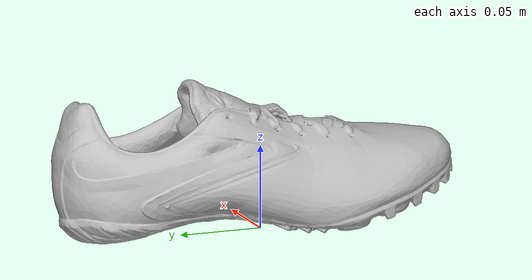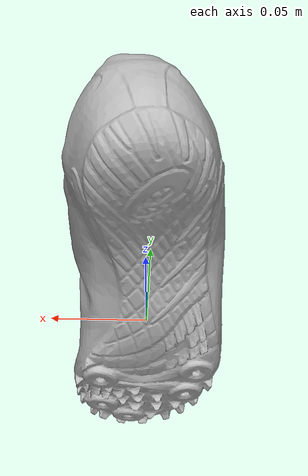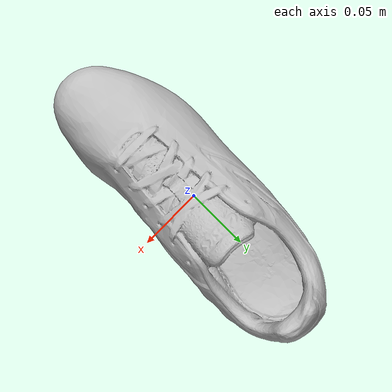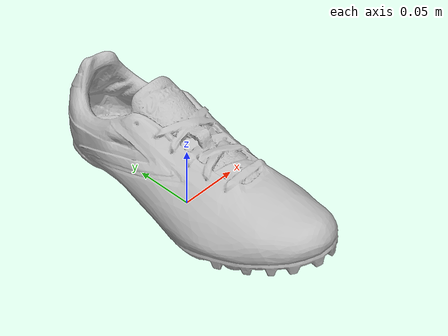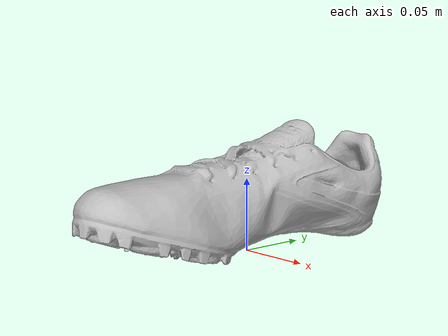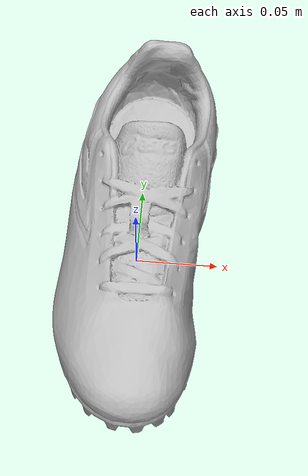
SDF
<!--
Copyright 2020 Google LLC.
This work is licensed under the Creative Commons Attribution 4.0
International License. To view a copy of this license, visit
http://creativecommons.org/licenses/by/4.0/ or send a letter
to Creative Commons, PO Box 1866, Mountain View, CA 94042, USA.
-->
<?xml version="1.0" ?>
<sdf version="1.6">
  <model name="ASICS_HyperRocketgirl_SP_5_WhiteMalibu_BlueBlack">
    <link name="link_0">
      <visual name="visual">
        <geometry>
          <mesh>
            <uri>meshes/model.obj</uri>
          </mesh>
        </geometry>
      </visual>
      <collision name="collision_0">
        <geometry>
          <mesh>
            <uri>meshes/model.obj</uri>
          </mesh>
        </geometry>
      </collision>
    </link>
  </model>
</sdf>
